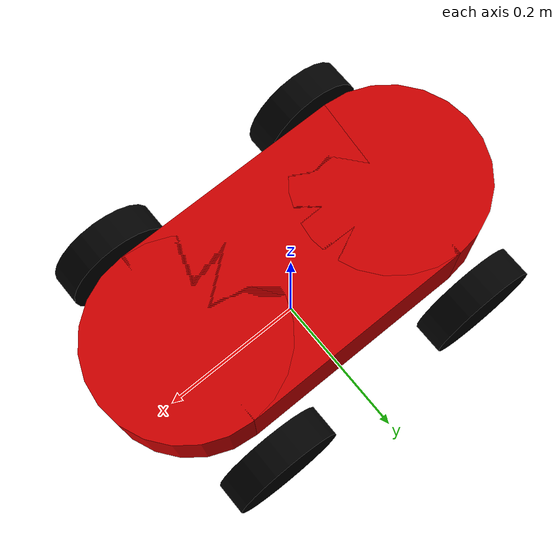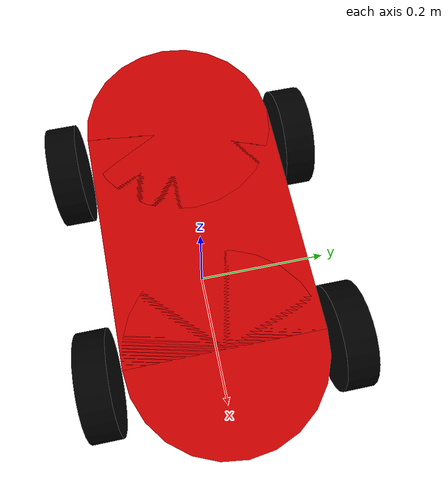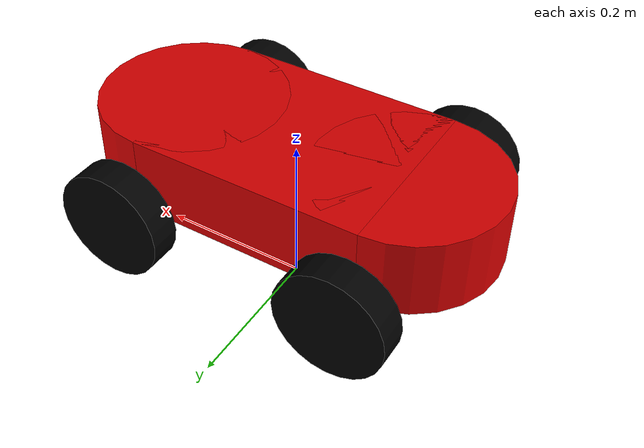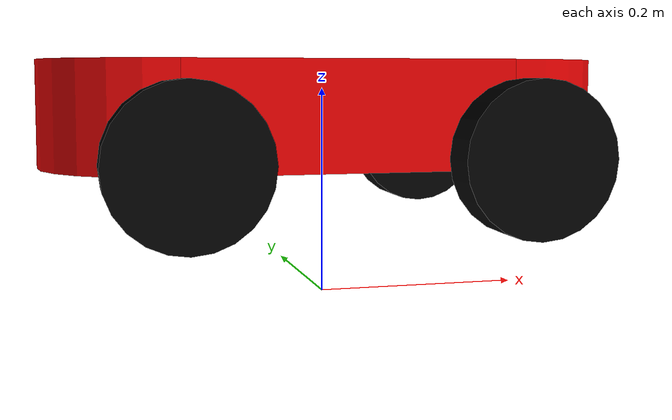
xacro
<?xml version="1.0"?>

<robot name="pioneer3dx">

<!-- Chassis -->
	<link name="/pioneer1/base_link">
		<inertial>
			<mass value="3.5"/>
			<origin xyz="-0.025 0 -0.223"/>
			<inertia ixx="1" ixy="0" ixz="0"
				 iyy="1" iyz="0"
				 izz="1"/>
		</inertial>
		<visual name="base_visual">
			<origin xyz="0 0 0.177" rpy="0 0 0"/>
			<geometry name="pioneer_geom">
				<box size="0.3 .24 .1"/>
			</geometry>
			<material name="ChassisRed">
				<color rgba="0.851 0.0 0.0 1.0"/>
			</material>
		</visual>
		<collision>
			<origin xyz="0 0 0" rpy="0 0 0"/>
				<geometry>
					<box size="0.01 0.01 0.01"/>
				</geometry>
		</collision>
	</link>

<!-- Front Curve -->
	<link name="/pioneer1/front_cyl">
		<inertial>
			<mass value="0"/>
			<origin xyz="-0.025 0 -0.223"/>
			<inertia ixx="1" ixy="0" ixz="0"
				 iyy="1" iyz="0"
 				izz="1"/>
		</inertial>
		<visual name="base_visual">
			<origin xyz="0.15 0 0.177" rpy="0 0 0"/>
			<geometry name="pioneer_geom">
				<cylinder length="0.1" radius="0.12"/>
			</geometry>
			<material name="TopBlack">
					<color rgba="0.851 0.0 0.0 1.0"/>
			</material>
		</visual>
		<collision>
			<origin xyz="0 0 0" rpy="0 0 0"/>
			<geometry>
				<box size="0 0 0"/>
			</geometry>
		</collision>
	</link>

	<joint name="base_top_joint" type="fixed">
		<origin xyz="0 0 0" rpy="0 0 0"/>
		<parent link="/pioneer1/base_link"/>
		<child link="/pioneer1/front_cyl"/>
	</joint>

<!-- Back Curve -->
	<link name="/pioneer1/back_cyl">
		<inertial>
			<mass value="0"/>
			<origin xyz="-0.025 0 -0.223"/>
			<inertia ixx="1" ixy="0" ixz="0"
				 iyy="1" iyz="0"
 				izz="1"/>
		</inertial>
		<visual name="base_visual">
			<origin xyz="-0.15 0 0.177" rpy="0 0 0"/>
			<geometry name="pioneer_geom">
				<cylinder length="0.1" radius="0.12"/>
			</geometry>
			<material name="TopBlack">
					<color rgba="0.851 0.0 0.0 1.0"/>
			</material>
		</visual>
		<collision>
			<origin xyz="0 0 0" rpy="0 0 0"/>
			<geometry>
				<box size="0 0 0"/>
			</geometry>
		</collision>
	</link>

	<joint name="back_curve_joint" type="fixed">
		<origin xyz="0 0 0" rpy="0 0 0"/>
		<parent link="/pioneer1/base_link"/>
		<child link="/pioneer1/back_cyl"/>
	</joint>

<!-- Wheel 1 -->
	<link name="/pioneer1/wheel1">
		<inertial>
			<mass value="0"/>
			<origin xyz="-0.025 0 -0.223"/>
			<inertia ixx="1" ixy="0" ixz="0"
				 iyy="1" iyz="0"
 				izz="1"/>
		</inertial>
		<visual name="base_visual">
			<origin xyz="0.15 0.16 0.14" rpy="1.57 0 0"/>
			<geometry name="pioneer_geom">
				<cylinder length="0.04" radius="0.07"/>
			</geometry>
			<material name="TopBlack">
					<color rgba="0.0 0.0 0.0 1.0"/>
			</material>
		</visual>
		<collision>
			<origin xyz="0 0 0" rpy="0 0 0"/>
			<geometry>
				<box size="0 0 0"/>
			</geometry>
		</collision>
	</link>

	<joint name="wheel1_joint" type="fixed">
		<origin xyz="0 0 0" rpy="0 0 0"/>
		<parent link="/pioneer1/base_link"/>
		<child link="/pioneer1/wheel1"/>
	</joint>

<!-- Wheel 2 -->
	<link name="/pioneer1/wheel2">
		<inertial>
			<mass value="0"/>
			<origin xyz="-0.025 0 -0.223"/>
			<inertia ixx="1" ixy="0" ixz="0"
				 iyy="1" iyz="0"
 				izz="1"/>
		</inertial>
		<visual name="base_visual">
			<origin xyz="0.15 -0.16 0.14" rpy="1.57 0 0"/>
			<geometry name="pioneer_geom">
				<cylinder length="0.04" radius="0.07"/>
			</geometry>
			<material name="TopBlack">
					<color rgba="0.0 0.0 0.0 1.0"/>
			</material>
		</visual>
		<collision>
			<origin xyz="0 0 0" rpy="0 0 0"/>
			<geometry>
				<box size="0 0 0"/>
			</geometry>
		</collision>
	</link>

	<joint name="wheel2_joint" type="fixed">
		<origin xyz="0 0 0" rpy="0 0 0"/>
		<parent link="/pioneer1/base_link"/>
		<child link="/pioneer1/wheel2"/>
	</joint>

<!-- Wheel 3 -->
	<link name="/pioneer1/wheel3">
		<inertial>
			<mass value="0"/>
			<origin xyz="-0.025 0 -0.223"/>
			<inertia ixx="1" ixy="0" ixz="0"
				 iyy="1" iyz="0"
 				izz="1"/>
		</inertial>
		<visual name="base_visual">
			<origin xyz="-0.15 0.16 0.14" rpy="1.57 0 0"/>
			<geometry name="pioneer_geom">
				<cylinder length="0.04" radius="0.07"/>
			</geometry>
			<material name="TopBlack">
					<color rgba="0.0 0.0 0.0 1.0"/>
			</material>
		</visual>
		<collision>
			<origin xyz="0 0 0" rpy="0 0 0"/>
			<geometry>
				<box size="0 0 0"/>
			</geometry>
		</collision>
	</link>

	<joint name="wheel3_joint" type="fixed">
		<origin xyz="0 0 0" rpy="0 0 0"/>
		<parent link="/pioneer1/base_link"/>
		<child link="/pioneer1/wheel3"/>
	</joint>

<!-- Wheel 4 -->
	<link name="/pioneer1/wheel4">
		<inertial>
			<mass value="0"/>
			<origin xyz="-0.025 0 -0.223"/>
			<inertia ixx="1" ixy="0" ixz="0"
				 iyy="1" iyz="0"
 				izz="1"/>
		</inertial>
		<visual name="base_visual">
			<origin xyz="-0.15 -0.16 0.14" rpy="1.57 0 0"/>
			<geometry name="pioneer_geom">
				<cylinder length="0.04" radius="0.07"/>
			</geometry>
			<material name="TopBlack">
					<color rgba="0.0 0.0 0.0 1.0"/>
			</material>
		</visual>
		<collision>
			<origin xyz="0 0 0" rpy="0 0 0"/>
			<geometry>
				<box size="0 0 0"/>
			</geometry>
		</collision>
	</link>

	<joint name="wheel4_joint" type="fixed">
		<origin xyz="0 0 0" rpy="0 0 0"/>
		<parent link="/pioneer1/base_link"/>
		<child link="/pioneer1/wheel4"/>
	</joint>
</robot>
